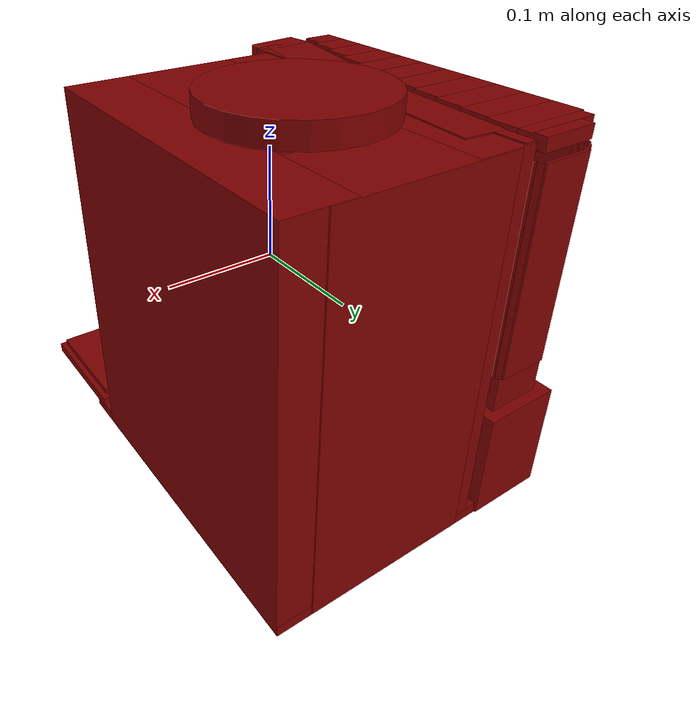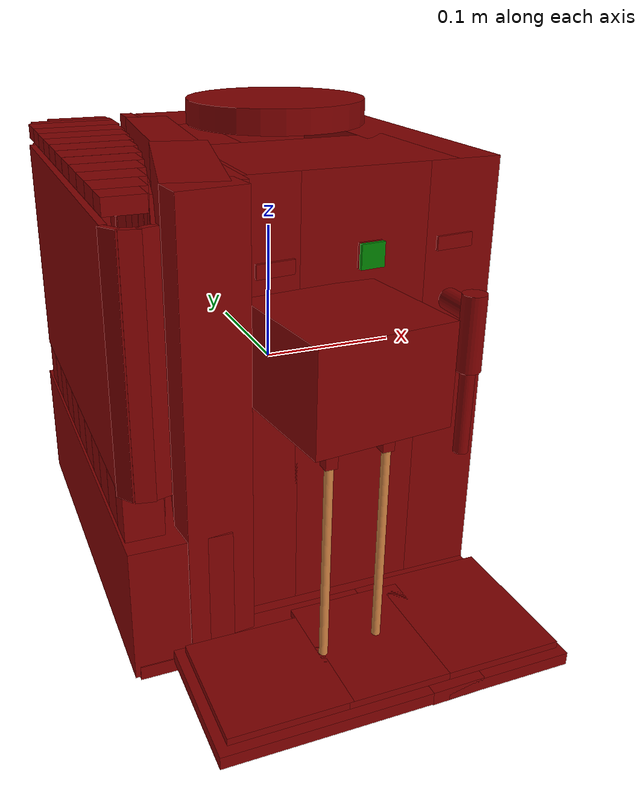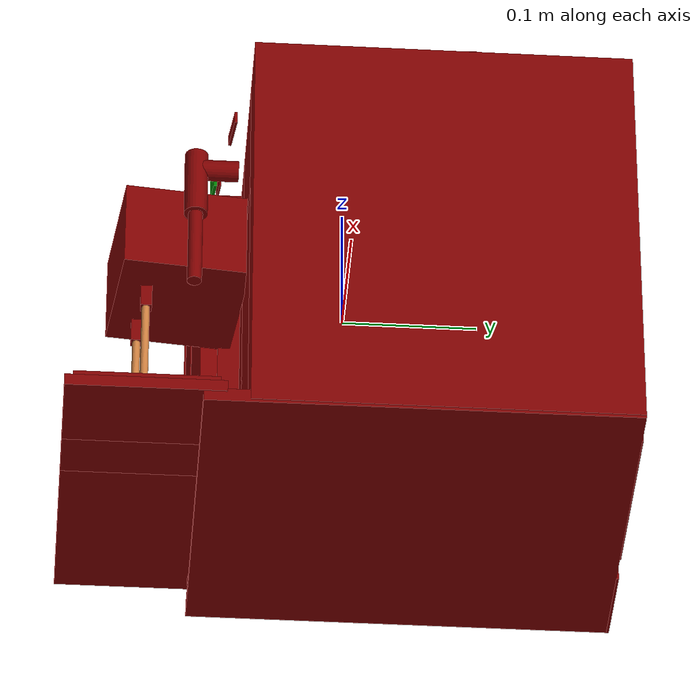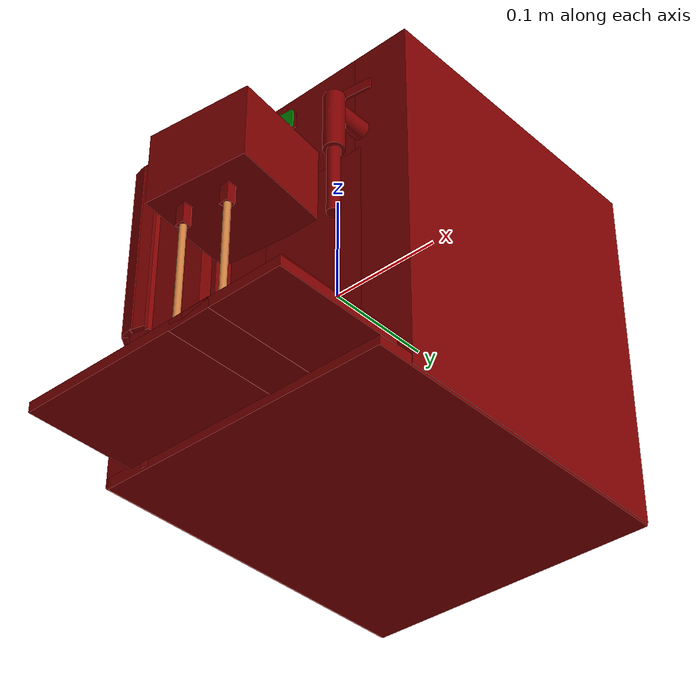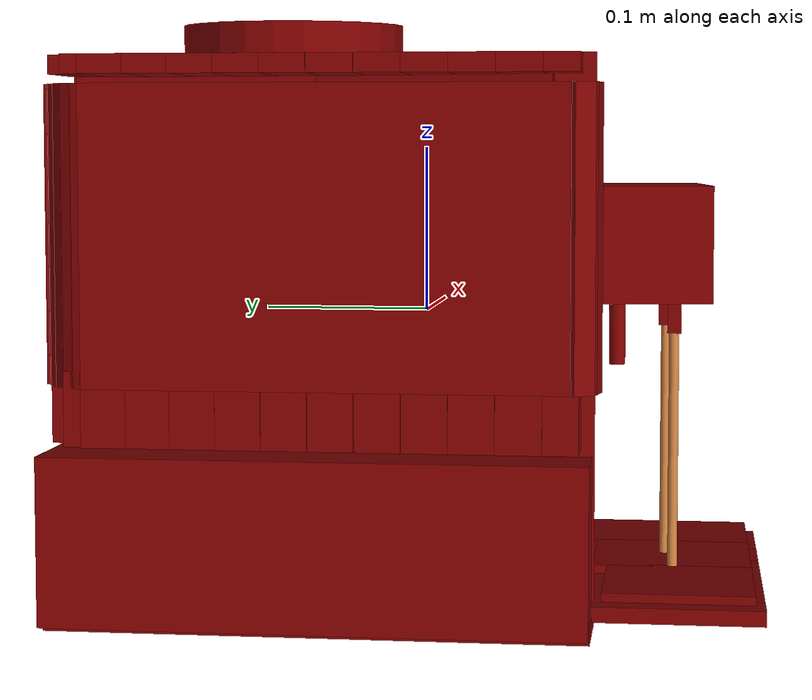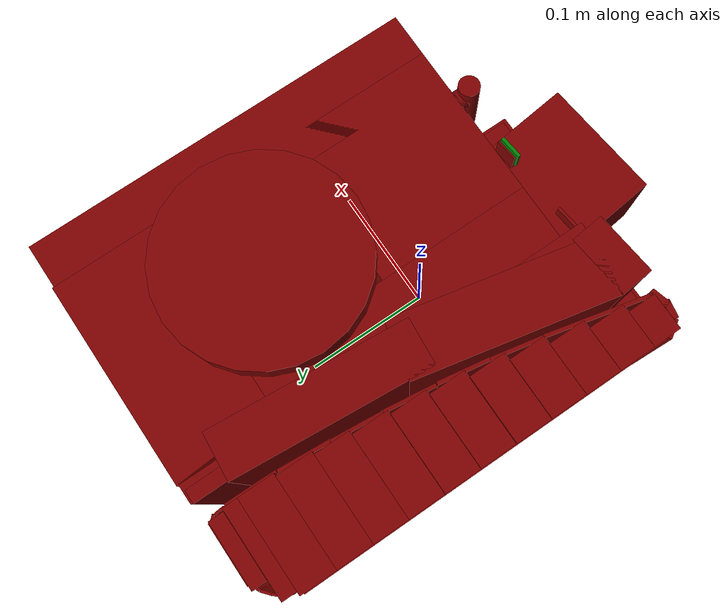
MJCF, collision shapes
<?xml version='1.0' encoding='UTF-8'?>
<mujoco model="model">
  <compiler angle="radian"/>
  <asset>
    <mesh file="visuals/Body001.obj" name="Body001_vis"/>
    <mesh file="visuals/Button001.obj" name="Button001_vis"/>
    <mesh file="visuals/Button002.obj" name="Button002_vis"/>
    <mesh file="visuals/Button003.obj" name="Button003_vis"/>
    <mesh file="visuals/Container001_Clear.obj" name="Container001_Clear_vis"/>
    <mesh file="visuals/Lid001.obj" name="Lid001_vis"/>
    <mesh file="visuals/Lid002.obj" name="Lid002_vis"/>
    <mesh file="visuals/Lid003.obj" name="Lid003_vis"/>
    <texture file="visuals/T_BC001.png" name="Body001_material" type="2d"/>
    <material name="Body001_material" rgba="1 1 1 1.0" texture="Body001_material" shininess="0.2512328028678894" specular="0.3103448502657381"/>
    <texture file="visuals/T_BC001.png" name="Button001_material" type="2d"/>
    <material name="Button001_material" rgba="1 1 1 1.0" texture="Button001_material" shininess="0.2512328028678894" specular="0.3103448502657381"/>
    <texture file="visuals/T_BC001.png" name="Button002_material" type="2d"/>
    <material name="Button002_material" rgba="1 1 1 1.0" texture="Button002_material" shininess="0.2512328028678894" specular="0.3103448502657381"/>
    <texture file="visuals/T_BC001.png" name="Button003_material" type="2d"/>
    <material name="Button003_material" rgba="1 1 1 1.0" texture="Button003_material" shininess="0.2512328028678894" specular="0.3103448502657381"/>
    <texture file="visuals/T_BC001.png" name="Container001_Clear_material" type="2d"/>
    <material name="Container001_Clear_material" rgba="1 1 1 0.8397790193557739" texture="Container001_Clear_material" shininess="0.5" specular="0.3103448502657381"/>
    <texture file="visuals/T_BC001.png" name="Lid002_material" type="2d"/>
    <material name="Lid002_material" rgba="1 1 1 1.0" texture="Lid002_material" shininess="0.2512328028678894" specular="0.3103448502657381"/>
    <texture file="visuals/T_BC001.png" name="Lid001_material" type="2d"/>
    <material name="Lid001_material" rgba="1 1 1 1.0" texture="Lid001_material" shininess="0.2512328028678894" specular="0.3103448502657381"/>
    <texture file="visuals/T_BC001.png" name="Lid003_material" type="2d"/>
    <material name="Lid003_material" rgba="1 1 1 1.0" texture="Lid003_material" shininess="0.2512328028678894" specular="0.3103448502657381"/>
  </asset>
  <default>
    <default class="visual">
      <geom conaffinity="0" contype="0" group="1" type="mesh"/>
    </default>
    <default class="collision">
      <geom group="0" rgba="0.5 0 0 0.5"/>
    </default>
    <default class="spawn">
      <geom group="0" rgba="1 1 1 0.5" contype="0" conaffinity="0"/>
      <site group="0" rgba="1 1 1 0.5"/>
    </default>
    <default class="region">
      <geom group="1" conaffinity="0" contype="0" rgba="0 1 0 0"/>
    </default>
  </default>
  <worldbody>
    <body>
      <body name="object">
        <geom class="collision" type="box" pos="0.031757 -0.098979 0.101658" size="0.008695770986378193 0.0013082529185339808 0.008370288647711277" quat="0.9986504912376404 0.0 0.0 0.05193491652607918" name="start_button" rgba="0.0 0.5 0 0.5"/>
        <site type="cylinder" rgba="0.8 0.5 0.25 1" size="0.003000000026077032 0.073062464594841" pos="-0.019947 -0.152544 -0.084143" name="coffee_liquid_left"/>
        <site type="cylinder" rgba="0.8 0.5 0.25 1" size="0.003000000026077032 0.07413771748542786" pos="0.022033 -0.147328 -0.083068" name="coffee_liquid_right"/>
        <site rgba="0 0 0 0" size="0.009999999776482582 0.010000001639127731" pos="0.0008920000000000004 -0.151788 -0.148970" name="receptacle_place_site"/>
        <geom mesh="Body001_vis" type="mesh" solimp="0.998 0.998 0.001" solref="0.001 1" density="100" friction="0.95 0.3 0.1" class="visual" material="Body001_material"/>
        <geom class="collision" type="box" pos="-0.052413 0.057477 -0.010695" size="0.004968965891748667 0.14810623228549957 0.16488753259181976" quat="1.0 0.0 0.0 0.0"/>
        <geom class="collision" type="box" pos="-0.031665 0.066488 -0.011198" size="0.024568459019064903 0.1407407969236374 0.16439300775527954" quat="1.0 0.0 0.0 0.0"/>
        <geom class="collision" type="box" pos="0.003344 -0.123287 0.042429" size="0.04819783568382263 0.04713773354887962 0.034916095435619354" quat="0.9984815716743469 0.0 0.0 0.05508687347173691"/>
        <geom class="collision" type="box" pos="0.021680 -0.147106 -0.001006" size="0.004158679861575365 0.004158679861575365 0.009291408583521843" quat="1.0 0.0 0.0 0.0"/>
        <geom class="collision" type="box" pos="-0.020020 -0.152603 -0.001261" size="0.0041586896404623985 0.0041586896404623985 0.010334963910281658" quat="1.0 0.0 0.0 0.0"/>
        <geom class="collision" type="box" pos="-0.033443 -0.148489 -0.165194" size="0.07759290188550949 0.05789041146636009 0.004581827204674482" quat="1.0 0.0 0.0 0.0"/>
        <geom class="collision" type="box" pos="0.092021 -0.148489 -0.165194" size="0.045976608991622925 0.05789041146636009 0.00458182767033577" quat="1.0 0.0 0.0 0.0"/>
        <geom class="collision" type="box" pos="0.053008 -0.148489 -0.165194" size="0.018987338989973068 0.05789041146636009 0.004900225438177586" quat="0.008435225114226341 0.0 0.9999644160270691 0.0"/>
        <geom class="collision" type="cylinder" pos="0.100112 -0.114616 0.045675" size="0.008716399781405926 0.027273768559098244" quat="1.0 -8.146033536604591e-08 0.0 0.0"/>
        <geom class="collision" type="cylinder" pos="0.099911 -0.114616 -0.011813" size="0.005368796642869711 0.03162379190325737" quat="1.0 -8.146033536604591e-08 0.0 0.0"/>
        <geom class="collision" type="cylinder" pos="0.100112 -0.096930 0.059457" size="0.007800714112818241 0.013359717093408108" quat="0.7071068286895752 0.7071067690849304 0.0 0.0"/>
        <geom class="collision" type="box" pos="-0.102435 0.051369 -0.125983" size="0.035706985741853714 0.15827618539333344 0.04960869997739792" quat="1.0 0.0 0.0 0.0"/>
        <geom class="collision" type="box" pos="0.111630 0.066488 -0.011198" size="0.026299407705664635 0.1407407969236374 0.16439300775527954" quat="1.0 0.0 0.0 0.0"/>
        <geom class="collision" type="box" pos="0.031767 -0.019645 -0.011198" size="0.07458734512329102 0.05460769683122635 0.16439300775527954" quat="1.0 0.0 0.0 0.0"/>
        <geom class="collision" type="box" pos="0.031767 0.171924 -0.011198" size="0.07458734512329102 0.03657207638025284 0.16439300775527954" quat="1.0 0.0 0.0 0.0"/>
        <geom class="collision" type="box" pos="0.041161 0.066488 -0.060206" size="0.04993301257491112 0.1407407969236374 0.11538515239953995" quat="1.0 0.0 0.0 0.0"/>
        <geom class="collision" type="box" pos="0.001317 0.049790 -0.172572" size="0.1359642893075943 0.15743900835514069 0.005234886426478624" quat="1.0 0.0 0.0 0.0"/>
        <geom class="collision" type="box" pos="-0.075892 -0.093833 -0.010695" size="0.02360137552022934 0.012114958837628365 0.164891317486763" quat="0.9985755681991577 0.0 0.0 0.053355492651462555"/>
        <geom class="collision" type="box" pos="-0.064421 -0.017434 -0.010695" size="0.021201184019446373 0.0721595361828804 0.164891317486763" quat="0.9943825602531433 0.0 -0.0 -0.10584581643342972"/>
        <geom class="collision" type="box" pos="-0.047077 0.108258 -0.010695" size="0.017365695908665657 0.0721595361828804 0.164891317486763" quat="0.9990872740745544 0.0 -0.0 -0.04271502420306206"/>
        <body name="Button001">
          <joint axis="0.002289258176460862 0.9999973773956299 0.0" pos="-0.036872 -0.102313 0.101881" limited="true" name="Button001_joint" range="0.0 0.001" type="slide" damping="1" frictionloss="1" armature=".01" stiffness="0.05"/>
          <geom mesh="Button001_vis" type="mesh" solimp="0.998 0.998 0.001" solref="0.001 1" density="100" friction="0.95 0.3 0.1" class="visual" material="Button001_material"/>
          <geom class="collision" type="box" pos="-0.035719 -0.102966 0.101272" size="0.013240949250757694 0.001092113321647048 0.0047618248499929905" quat="0.9983405470848083 0.0 0.0 0.05758589133620262"/>
        </body>
        <body name="Button002">
          <joint axis="0.0 1.0 0.0" pos="0.097887 -0.087904 0.101899" limited="true" name="Button002_joint" range="0.0 0.001" type="slide" damping="1" frictionloss="1" armature=".01" stiffness="0.05"/>
          <geom mesh="Button002_vis" type="mesh" solimp="0.998 0.998 0.001" solref="0.001 1" density="100" friction="0.95 0.3 0.1" class="visual" material="Button002_material"/>
          <geom class="collision" type="box" pos="0.098172 -0.088008 0.101633" size="0.014052901417016983 0.0010918296175077558 0.0047618248499929905" quat="0.9983405470848083 0.0 0.0 0.05758589133620262"/>
        </body>
        <body name="Button003">
          <joint axis="-0.023110538721084595 0.9997329711914062 0.0" pos="0.031624 -0.098050 0.101578" limited="true" name="Button003_joint" range="0.0 0.001" type="slide" damping="1" frictionloss="1" armature=".01" stiffness="0.05"/>
          <geom mesh="Button003_vis" type="mesh" solimp="0.998 0.998 0.001" solref="0.001 1" density="100" friction="0.95 0.3 0.1" class="visual" material="Button003_material"/>
          <geom class="collision" type="box" pos="0.031756 -0.095302 0.101658" size="0.008695770986378193 0.0006789616891182959 0.008370288647711277" quat="0.9986504912376404 0.0 0.0 0.05193491652607918"/>
        </body>
        <body name="Container001_Clear">
          <joint axis="0.0 0.0 1.0" pos="-0.102362 0.049204 0.035669" limited="true" name="Container001_Clear_joint" range="0.0 0.05" type="slide" damping="1" frictionloss="1" armature=".01" stiffness="0.05"/>
          <geom mesh="Container001_Clear_vis" type="mesh" solimp="0.998 0.998 0.001" solref="0.001 1" density="100" friction="0.95 0.3 0.1" class="visual" material="Container001_Clear_material"/>
          <geom class="collision" type="box" pos="-0.136433 0.042862 0.049769" size="0.002435383154079318 0.13907375931739807 0.08667664229869843" quat="1.0 0.0 0.0 0.0"/>
          <geom class="collision" type="box" pos="-0.134587 -0.102653 0.049769" size="0.0024354911874979734 0.08668027818202972 0.006776108872145414" quat="0.6743797659873962 0.6743797063827515 0.21263110637664795 0.21263112127780914"/>
          <geom class="collision" type="box" pos="-0.124522 -0.109486 0.049769" size="0.002435492118820548 0.08668027818202972 0.006776108872145414" quat="0.5416752696037292 0.5416752099990845 0.45451945066452026 0.45451948046684265"/>
          <geom class="collision" type="box" pos="-0.114426 -0.108301 0.049769" size="0.0024354923516511917 0.08668027818202972 0.006776108872145414" quat="0.4304594099521637 0.43045932054519653 0.5609855055809021 0.5609855055809021"/>
          <geom class="collision" type="box" pos="-0.101306 -0.068898 0.049769" size="0.0013529960997402668 0.08668028563261032 0.03836115822196007" quat="0.08215488493442535 0.08215485513210297 0.702318012714386 0.702318012714386"/>
          <geom class="collision" type="box" pos="-0.088895 -0.013268 0.049769" size="0.001352995983324945 0.08668027818202972 0.01881294697523117" quat="0.07152498513460159 0.0715249553322792 0.7034801244735718 0.7034800052642822"/>
          <geom class="collision" type="box" pos="-0.081723 0.023696 0.049769" size="0.0013529958669096231 0.08668027818202972 0.01881294511258602" quat="0.05827239528298378 0.05827236548066139 0.7047016620635986 0.7047015428543091"/>
          <geom class="collision" type="box" pos="-0.076604 0.061553 0.049769" size="0.0013529960997402668 0.08668028563261032 0.01881294697523117" quat="0.0457569882273674 0.0457569845020771 0.7056247591972351 0.7056247591972351"/>
          <geom class="collision" type="box" pos="-0.072542 0.099584 0.049769" size="0.0013529958669096231 0.08668027818202972 0.01881294697523117" quat="0.034577626734972 0.034577593207359314 0.7062608599662781 0.7062608599662781"/>
          <geom class="collision" type="box" pos="-0.068951 0.136929 0.032250" size="0.0013529949355870485 0.10419877618551254 0.01881294511258602" quat="0.026805954053997993 0.026805918663740158 0.7065985202789307 0.7065984606742859"/>
          <geom class="collision" type="box" pos="-0.067036 0.174897 0.049769" size="0.0013529958669096231 0.08668027818202972 0.01881294511258602" quat="0.0041997251100838184 0.0041996934451162815 0.7070943117141724 0.7070943117141724"/>
          <geom class="collision" type="box" pos="-0.092862 0.206869 0.049769" size="0.022729169577360153 0.0012405379675328732 0.08668386191129684" quat="1.0 0.0 0.0 0.0"/>
          <geom class="collision" type="box" pos="-0.069532 0.204632 0.049769" size="0.0009394331136718392 0.08668027818202972 0.003361134324222803" quat="0.2705981433391571 0.2705981135368347 -0.6532814502716064 -0.6532814502716064"/>
          <geom class="collision" type="box" pos="-0.067389 0.197942 0.049769" size="0.0009394327062182128 0.08668028563261032 0.003361133858561516" quat="0.030843645334243774 0.030843747779726982 -0.7064337730407715 -0.7064337730407715"/>
          <geom class="collision" type="box" pos="-0.118365 0.204320 0.049769" size="0.0009394334629178047 0.08668027818202972 0.0033611347898840904" quat="0.5792279243469238 0.5792280435562134 -0.4055797755718231 -0.40557971596717834"/>
          <geom class="collision" type="box" pos="-0.124393 0.200807 0.049769" size="0.0009394334047101438 0.08668028563261032 0.0033611345570534468" quat="0.6408563852310181 0.6408564448356628 -0.29883620142936707 -0.2988361716270447"/>
          <geom class="collision" type="box" pos="-0.129328 0.196107 0.049769" size="0.0009394334047101438 0.08668027818202972 0.0033611347898840904" quat="0.6644629836082458 0.6644631028175354 -0.2418447732925415 -0.24184469878673553"/>
          <geom class="collision" type="box" pos="-0.133088 0.190173 0.049769" size="0.0009394331136718392 0.08668027818202972 0.0033611347898840904" quat="0.6903455853462219 0.6903455257415771 -0.15304584801197052 -0.15304583311080933"/>
          <geom class="collision" type="box" pos="-0.134616 0.184416 0.049594" size="0.0009394329390488565 0.0868551954627037 0.0033611347898840904" quat="0.7010574340820312 0.7010573744773865 -0.09229589998722076 -0.09229588508605957"/>
          <geom class="collision" type="box" pos="-0.095296 0.198844 -0.048874" size="0.02434881217777729 0.005425900686532259 0.021666811779141426" quat="1.0 0.0 0.0 0.0"/>
          <geom class="collision" type="box" pos="-0.101875 0.187724 -0.048874" size="0.03295240178704262 0.005425900686532259 0.021666809916496277" quat="1.0 0.0 0.0 0.0"/>
          <geom class="collision" type="box" pos="-0.103414 0.169299 -0.048874" size="0.034491535276174545 0.013121570460498333 0.021666809916496277" quat="1.0 0.0 0.0 0.0"/>
          <geom class="collision" type="box" pos="-0.104488 0.143225 -0.048874" size="0.033417291939258575 0.013121570460498333 0.021666809916496277" quat="1.0 0.0 0.0 0.0"/>
          <geom class="collision" type="box" pos="-0.105653 0.117658 -0.048874" size="0.032252345234155655 0.013121570460498333 0.021666809916496277" quat="1.0 0.0 0.0 0.0"/>
          <geom class="collision" type="box" pos="-0.107136 0.091394 -0.048874" size="0.03076968900859356 0.013121570460498333 0.021666811779141426" quat="1.0 0.0 0.0 0.0"/>
          <geom class="collision" type="box" pos="-0.108619 0.064918 -0.048874" size="0.029287030920386314 0.013121570460498333 0.021666811779141426" quat="1.0 0.0 0.0 0.0"/>
          <geom class="collision" type="box" pos="-0.110419 0.038442 -0.048874" size="0.027486661449074745 0.013121570460498333 0.021666813641786575" quat="1.0 0.0 0.0 0.0"/>
          <geom class="collision" type="box" pos="-0.112961 0.011754 -0.048874" size="0.024944962933659554 0.013121570460498333 0.021666811779141426" quat="1.0 0.0 0.0 0.0"/>
          <geom class="collision" type="box" pos="-0.115655 -0.014722 -0.048874" size="0.022250516340136528 0.013121570460498333 0.021666813641786575" quat="1.0 0.0 0.0 0.0"/>
          <geom class="collision" type="box" pos="-0.118649 -0.041068 -0.048874" size="0.01925668865442276 0.013121568597853184 0.021666817367076874" quat="1.0 0.0 0.0 0.0"/>
          <geom class="collision" type="box" pos="-0.121678 -0.067414 -0.048874" size="0.016228068619966507 0.013121568597853184 0.021666819229722023" quat="1.0 0.0 0.0 0.0"/>
          <geom class="collision" type="box" pos="-0.124442 -0.090772 -0.048874" size="0.013463880866765976 0.010207966901361942 0.021666821092367172" quat="1.0 0.0 0.0 0.0"/>
          <body name="Lid002">
            <joint axis="0.0 0.0 1.0" pos="-0.102357 0.049195 0.145978" limited="true" name="Lid002_joint" range="0.0 0.05" type="slide" damping="1" frictionloss="1" armature=".01" stiffness="0.05"/>
            <geom mesh="Lid002_vis" type="mesh" solimp="0.998 0.998 0.001" solref="0.001 1" density="100" friction="0.95 0.3 0.1" class="visual" material="Lid002_material"/>
            <geom class="collision" type="box" pos="-0.124442 -0.090772 0.147359" size="0.013463878072798252 0.010207966901361942 0.005523084197193384" quat="1.0 0.0 0.0 0.0"/>
            <geom class="collision" type="box" pos="-0.121678 -0.067414 0.147359" size="0.01622806489467621 0.013121568597853184 0.005523084197193384" quat="1.0 0.0 0.0 0.0"/>
            <geom class="collision" type="box" pos="-0.118649 -0.041068 0.147359" size="0.01925668679177761 0.013121568597853184 0.0055230832658708096" quat="1.0 0.0 0.0 0.0"/>
            <geom class="collision" type="box" pos="-0.115655 -0.014722 0.147359" size="0.02225051261484623 0.013121570460498333 0.005523082800209522" quat="1.0 0.0 0.0 0.0"/>
            <geom class="collision" type="box" pos="-0.112961 0.011754 0.147359" size="0.024944957345724106 0.013121570460498333 0.0055230832658708096" quat="1.0 0.0 0.0 0.0"/>
            <geom class="collision" type="box" pos="-0.110419 0.038442 0.147359" size="0.027486655861139297 0.013121570460498333 0.0055230832658708096" quat="1.0 0.0 0.0 0.0"/>
            <geom class="collision" type="box" pos="-0.108619 0.064918 0.147359" size="0.029287029057741165 0.013121570460498333 0.0055230832658708096" quat="1.0 0.0 0.0 0.0"/>
            <geom class="collision" type="box" pos="-0.107136 0.091394 0.147359" size="0.03076968528330326 0.013121570460498333 0.005523082800209522" quat="1.0 0.0 0.0 0.0"/>
            <geom class="collision" type="box" pos="-0.105653 0.117658 0.147359" size="0.032252341508865356 0.013121570460498333 0.005523082800209522" quat="1.0 0.0 0.0 0.0"/>
            <geom class="collision" type="box" pos="-0.104488 0.143225 0.147359" size="0.03341728821396828 0.013121570460498333 0.005523082800209522" quat="1.0 0.0 0.0 0.0"/>
            <geom class="collision" type="box" pos="-0.103414 0.169299 0.147359" size="0.03449153155088425 0.013121570460498333 0.005523082800209522" quat="1.0 0.0 0.0 0.0"/>
            <geom class="collision" type="box" pos="-0.101875 0.187724 0.147359" size="0.03295239806175232 0.005425900686532259 0.005523082800209522" quat="1.0 0.0 0.0 0.0"/>
            <geom class="collision" type="box" pos="-0.095296 0.198844 0.147359" size="0.02434881031513214 0.005425900686532259 0.0055230832658708096" quat="1.0 0.0 0.0 0.0"/>
          </body>
        </body>
        <body name="Lid001">
          <joint axis="0.0 0.0 1.0" pos="0.000001 -0.000001 0.000000" limited="true" name="Lid001_joint" range="0.0 0.05" type="slide" damping="1" frictionloss="1" armature=".01" stiffness="0.05"/>
          <geom mesh="Lid001_vis" type="mesh" solimp="0.998 0.998 0.001" solref="0.001 1" density="100" friction="0.95 0.3 0.1" class="visual" material="Lid001_material"/>
          <geom class="collision" type="cylinder" pos="0.040722 0.090394 0.167268" size="0.06998810917139053 0.009508101269602776" quat="1.0 0.0 0.0 0.0"/>
        </body>
        <body name="Lid003">
          <joint axis="0.0 4.371138828673793e-08 1.0" pos="0.013309 -0.145412 -0.162697" limited="true" name="Lid003_joint" range="0.0 0.03" type="slide" damping="1" frictionloss="1" armature=".01" stiffness="0.05"/>
          <geom mesh="Lid003_vis" type="mesh" solimp="0.998 0.998 0.001" solref="0.001 1" density="100" friction="0.95 0.3 0.1" class="visual" material="Lid003_material"/>
          <geom class="collision" type="box" pos="-0.062342 -0.156597 -0.156470" size="0.04213865101337433 0.043775949627161026 0.002591590629890561" quat="1.0 0.0 0.0 0.0"/>
          <geom class="collision" type="box" pos="0.018767 -0.152189 -0.156470" size="0.04213865101337433 0.04818406328558922 0.002591590629890561" quat="1.0 0.0 0.0 0.0"/>
          <geom class="collision" type="box" pos="0.091060 -0.147781 -0.156470" size="0.04213865101337433 0.05259217694401741 0.002591590629890561" quat="1.0 0.0 0.0 0.0"/>
        </body>
        <geom class="region" name="reg_main" type="box" pos="1.000000000001e-06 -5.000000000005e-07 0.0" size="0.137773 0.2074725 0.176133"/>
      </body>
    </body>
  </worldbody>
  <actuator>
    <motor name="Button001_joint_actuator" joint="Button001_joint" gear="0.5"/>
    <motor name="Button002_joint_actuator" joint="Button002_joint" gear="0.5"/>
    <motor name="Button003_joint_actuator" joint="Button003_joint" gear="0.5"/>
    <motor name="Container001_Clear_joint_actuator" joint="Container001_Clear_joint" gear="10"/>
    <motor name="Lid001_joint_actuator" joint="Lid001_joint" gear="10"/>
    <motor name="Lid003_joint_actuator" joint="Lid003_joint" gear="10"/>
    <motor name="Lid002_joint_actuator" joint="Lid002_joint" gear="10"/>
  </actuator>
</mujoco>
